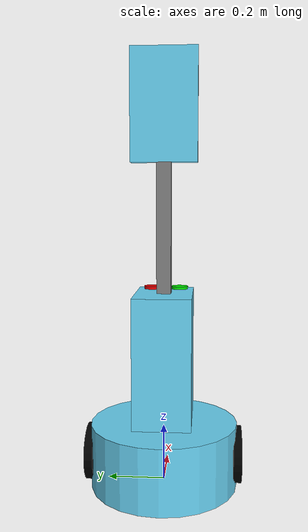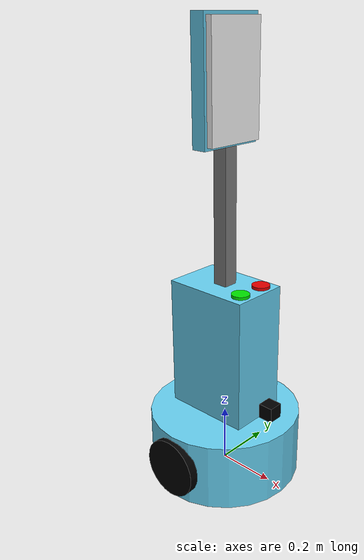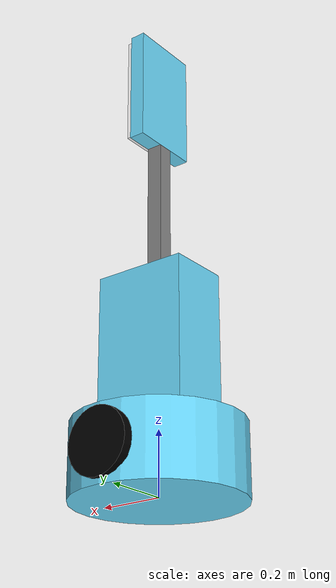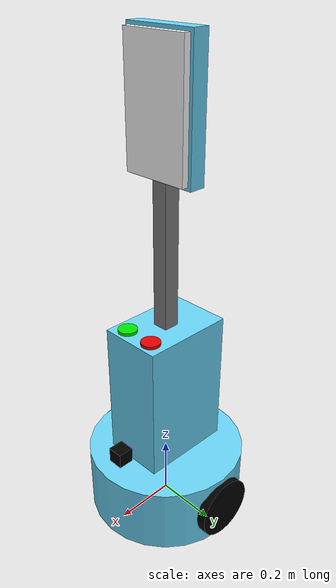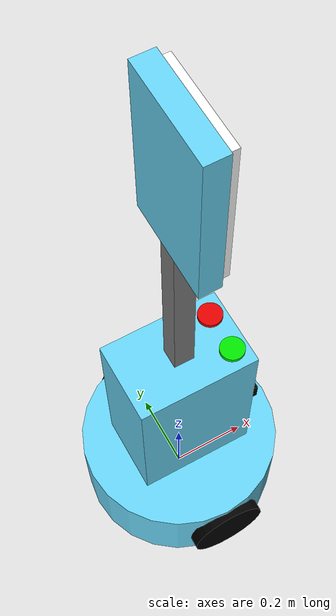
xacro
<?xml version="1.0" ?>

<!-- |    This document was autogenerated by xacro from giraff.urdf                    | -->
<!-- |    EDITING THIS FILE BY HAND IS NOT RECOMMENDED                                 | -->
<robot xmlns:xacro="http://www.ros.org/wiki/xacro" name="giraff">

  <xacro:arg name="frame_ns" default="giraff"/>

  ### Define colors

  <material name="blue">
    <color rgba="0.41 0.83 0.96 1"/>
  </material>
  <material name="black">
    <color rgba="0 0 0 1"/>
  </material>
  <material name="white">
    <color rgba="1 1 1 1"/>
  </material>
  <material name="grey">
    <color rgba="0.5 0.5 0.5 1"/>
  </material>
  <material name="red">
    <color rgba="0.9 0.0 0.0 1"/>
  </material>
  <material name="green">
    <color rgba="0.0 0.9 0.0 1"/>
  </material>

  # Base_link

  <link name="$(arg frame_ns)_base_link">
    <visual>
      <geometry>
        <cylinder length="0.23" radius="0.26"/>
      </geometry>
      <material name="blue"/>
      <origin xyz="0 0 0.1"/>
    </visual>
  </link>

  # Right wheel

  <link name="$(arg frame_ns)_right_wheel">
    <visual>
      <origin rpy="1.57075 0 0" xyz="0 0 0"/>
      <geometry>
        <cylinder length="0.03" radius="0.10"/>
      </geometry>
      <material name="black"/>
    </visual>
  </link>
  <joint name="$(arg frame_ns)_base_to_right_wheel_joint" type="fixed">
    <parent link="$(arg frame_ns)_base_link"/>
    <child link="$(arg frame_ns)_right_wheel"/>
    <origin rpy="0 0 0" xyz="0 0.26 0.1"/>
  </joint>

  #Left wheel

  <link name="$(arg frame_ns)_left_wheel">
    <visual>
      <origin rpy="1.57075 0 0" xyz="0 0 0"/>
      <geometry>
        <cylinder length="0.03" radius="0.10"/>
      </geometry>
      <material name="black"/>
    </visual>
  </link>
  <joint name="$(arg frame_ns)_base_to_left_wheel_joint" type="fixed">
    <parent link="$(arg frame_ns)_base_link"/>
    <child link="$(arg frame_ns)_left_wheel"/>
    <origin rpy="0 0 0" xyz="0 -0.26 0.1"/>
  </joint>

  # Body

  <link name="$(arg frame_ns)_body">
    <visual>
      <geometry>
        <box size="0.3 0.2 0.45"/>
      </geometry>
      <material name="blue"/>
    </visual>
  </link>
  <joint name="$(arg frame_ns)_base_to_body" type="fixed">
    <parent link="$(arg frame_ns)_base_link"/>
    <child link="$(arg frame_ns)_body"/>
    <origin xyz="0.0 0.0 0.455"/>
  </joint>

  #Neck

  <link name="$(arg frame_ns)_neck">
    <visual>
      <geometry>
        <box size="0.05 0.05 0.45"/>
      </geometry>
      <material name="grey"/>
    </visual>
  </link>
  <joint name="$(arg frame_ns)_body_to_neck" type="fixed">
    <parent link="$(arg frame_ns)_body"/>
    <child link="$(arg frame_ns)_neck"/>
    <origin xyz="0.0 0.0 0.45"/>
  </joint>

  #Head

  <link name="$(arg frame_ns)_head">
    <visual>
      <geometry>
        <box size="0.05 0.23 0.38"/>
      </geometry>
      <material name="blue"/>
    </visual>
  </link>
  <joint name="$(arg frame_ns)_neck_to_head" type="fixed">
    <parent link="$(arg frame_ns)_neck"/>
    <child link="$(arg frame_ns)_head"/>
    <origin xyz="0 0 0.415"/>
  </joint>

  #Screen

  <link name="$(arg frame_ns)_screen">
    <visual>
      <geometry>
        <box size="0.05 0.21 0.36"/>
      </geometry>
      <material name="white"/>
    </visual>
  </link>
  <joint name="$(arg frame_ns)_head_to_screen" type="fixed">
    <parent link="$(arg frame_ns)_head"/>
    <child link="$(arg frame_ns)_screen"/>
    <origin xyz="0.02 0.0 0.0"/>
  </joint>

  ## EXTRAS ##

  #Hokuyo front

  <link name="$(arg frame_ns)_hokuyo_front">
    <visual>
      <geometry>
        <box size="0.05 0.05 0.05"/>
      </geometry>
      <material name="black"/>
    </visual>
  </link>
  <joint name="$(arg frame_ns)_base_to_hokuyo_front" type="fixed">
    <parent link="$(arg frame_ns)_base_link"/>
    <child link="$(arg frame_ns)_hokuyo_front"/>
    <origin xyz="0.2 0.0 0.28"/>
  </joint>

  #red button

  <link name="$(arg frame_ns)_red_button">
    <visual>
      <geometry>
        <cylinder length="0.02" radius="0.03"/>
      </geometry>
      <material name="red"/>
    </visual>
  </link>
  <joint name="$(arg frame_ns)_body_to_red_button" type="fixed">
    <parent link="$(arg frame_ns)_body"/>
    <child link="$(arg frame_ns)_red_button"/>
    <origin xyz="0.11 0.05 0.225"/>
  </joint>

  #green button

  <link name="$(arg frame_ns)_green_button">
    <visual>
      <geometry>
        <cylinder length="0.02" radius="0.03"/>
      </geometry>
      <material name="green"/>
    </visual>
  </link>
  <joint name="$(arg frame_ns)_body_to_green_button" type="fixed">
    <parent link="$(arg frame_ns)_body"/>
    <child link="$(arg frame_ns)_green_button"/>
    <origin xyz="0.11 -0.05 0.225"/>
  </joint>
</robot>
